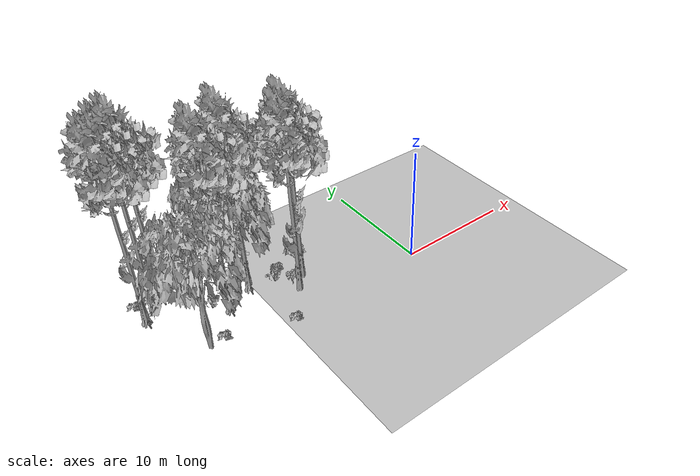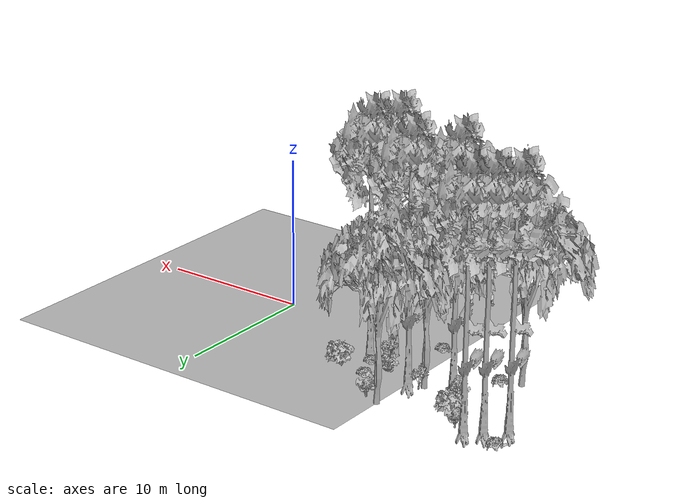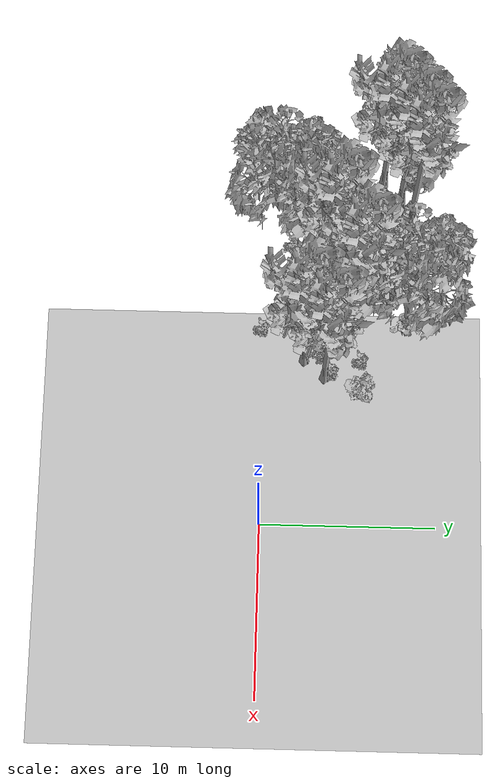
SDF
<sdf version="1.7">
 <world name="default">
  <model name="ground_plane">
   <static>1</static>
   <link name="link">
    <collision name="collision">
     <pose>-50 0 0 0 -0 0</pose>
     <geometry><plane><normal>0 0 1</normal><size>80 80</size></plane></geometry>
     <surface><contact><ode><min_depth>0.01</min_depth><max_vel>0</max_vel></ode></contact></surface>
    </collision>
    <visual name="grass">
     <cast_shadows>0</cast_shadows>
     <geometry>
      <mesh>
       <scale>0.46714285714285714 0.46714285714285714 0.1</scale>
       <uri>file://grass_plane/meshes/grass_plane.dae</uri>
      </mesh>
     </geometry>
    </visual>
   </link>
  </model>
  <model name="Tree 1">
   <static>1</static>
   <pose>-15.093527077515418 4.062446244424052 0 1.57079 -0 0</pose>
   <link name="link">
    <collision name="collision">
     <geometry><mesh><scale>3.5 5 3.5</scale><uri>model://tree_9/meshes/tree_9.obj</uri></mesh></geometry>
    </collision>
    <visual name="visual">
     <geometry><mesh><scale>3.5 5 3.5</scale><uri>model://tree_9/meshes/tree_9.obj</uri></mesh></geometry>
    </visual>
   </link>
  </model>
  <model name="Tree 18">
   <static>1</static>
   <pose>-12.724855560985617 8.397438927089532 0 1.57079 -0 0</pose>
   <link name="link">
    <collision name="collision">
     <geometry><mesh><scale>3.5 5 3.5</scale><uri>model://tree_2/meshes/tree_2.obj</uri></mesh></geometry>
    </collision>
    <visual name="visual">
     <geometry><mesh><scale>3.5 5 3.5</scale><uri>model://tree_2/meshes/tree_2.obj</uri></mesh></geometry>
    </visual>
   </link>
  </model>
  <model name="Tree 21">
   <static>1</static>
   <pose>-18.73084294914996 8.566120374249742 0 1.57079 -0 0</pose>
   <link name="link">
    <collision name="collision">
     <geometry><mesh><scale>3.5 5 3.5</scale><uri>model://tree_9/meshes/tree_9.obj</uri></mesh></geometry>
    </collision>
    <visual name="visual">
     <geometry><mesh><scale>3.5 5 3.5</scale><uri>model://tree_9/meshes/tree_9.obj</uri></mesh></geometry>
    </visual>
   </link>
  </model>
  <model name="Tree 142">
   <static>1</static>
   <pose>-9.706391934915825 2.3898278872918084 0 1.57079 -0 0</pose>
   <link name="link">
    <collision name="collision">
     <geometry><mesh><scale>3.5 5 3.5</scale><uri>model://tree_9/meshes/tree_9.obj</uri></mesh></geometry>
    </collision>
    <visual name="visual">
     <geometry><mesh><scale>3.5 5 3.5</scale><uri>model://tree_9/meshes/tree_9.obj</uri></mesh></geometry>
    </visual>
   </link>
  </model>
  <model name="Tree 172">
   <static>1</static>
   <pose>-12.697704763044289 5.311583235255156 0 1.57079 -0 0</pose>
   <link name="link">
    <collision name="collision">
     <geometry><mesh><scale>3.5 5 3.5</scale><uri>model://tree_9/meshes/tree_9.obj</uri></mesh></geometry>
    </collision>
    <visual name="visual">
     <geometry><mesh><scale>3.5 5 3.5</scale><uri>model://tree_9/meshes/tree_9.obj</uri></mesh></geometry>
    </visual>
   </link>
  </model>
  <model name="Tree 188">
   <static>1</static>
   <pose>-20.728645538184207 6.879668127119388 0 1.57079 -0 0</pose>
   <link name="link">
    <collision name="collision">
     <geometry><mesh><scale>3.5 5 3.5</scale><uri>model://tree_9/meshes/tree_9.obj</uri></mesh></geometry>
    </collision>
    <visual name="visual">
     <geometry><mesh><scale>3.5 5 3.5</scale><uri>model://tree_9/meshes/tree_9.obj</uri></mesh></geometry>
    </visual>
   </link>
  </model>
  <model name="Tree 436">
   <static>1</static>
   <pose>-19.670623640679445 7.912821819293342 0 1.57079 -0 0</pose>
   <link name="link">
    <collision name="collision">
     <geometry><mesh><scale>3.5 5 3.5</scale><uri>model://tree_9/meshes/tree_9.obj</uri></mesh></geometry>
    </collision>
    <visual name="visual">
     <geometry><mesh><scale>3.5 5 3.5</scale><uri>model://tree_9/meshes/tree_9.obj</uri></mesh></geometry>
    </visual>
   </link>
  </model>
  <model name="Tree 494">
   <static>1</static>
   <pose>-8.679380508762641 3.581211607805166 0 1.57079 -0 0</pose>
   <link name="link">
    <collision name="collision">
     <geometry><mesh><scale>3.5 5 3.5</scale><uri>model://tree_9/meshes/tree_9.obj</uri></mesh></geometry>
    </collision>
    <visual name="visual">
     <geometry><mesh><scale>3.5 5 3.5</scale><uri>model://tree_9/meshes/tree_9.obj</uri></mesh></geometry>
    </visual>
   </link>
  </model>
  <model name="Tree 537">
   <static>1</static>
   <pose>-18.27018404168917 1.224799246121897 0 1.57079 -0 0</pose>
   <link name="link">
    <collision name="collision">
     <geometry><mesh><scale>3.5 5 3.5</scale><uri>model://tree_2/meshes/tree_2.obj</uri></mesh></geometry>
    </collision>
    <visual name="visual">
     <geometry><mesh><scale>3.5 5 3.5</scale><uri>model://tree_2/meshes/tree_2.obj</uri></mesh></geometry>
    </visual>
   </link>
  </model>
  <model name="Tree 600">
   <static>1</static>
   <pose>-13.778136541005576 4.976689186851871 0 1.57079 -0 0</pose>
   <link name="link">
    <collision name="collision">
     <geometry><mesh><scale>3.5 5 3.5</scale><uri>model://tree_2/meshes/tree_2.obj</uri></mesh></geometry>
    </collision>
    <visual name="visual">
     <geometry><mesh><scale>3.5 5 3.5</scale><uri>model://tree_2/meshes/tree_2.obj</uri></mesh></geometry>
    </visual>
   </link>
  </model>
  <model name="Bush 99">
   <static>1</static>
   <pose>-20.951091364621053 8.570468547866142 0 1.57079 -0 0</pose>
   <link name="link">
    <collision name="collision">
     <geometry><mesh><scale>2 2 2</scale><uri>model://bush_2/meshes/bush_2.obj</uri></mesh></geometry>
     <surface><contact><collide_without_contact>false</collide_without_contact></contact></surface>
    </collision>
    <visual name="visual">
     <geometry><mesh><scale>2 2 2</scale><uri>model://bush_2/meshes/bush_2.obj</uri></mesh></geometry>
    </visual>
   </link>
  </model>
  <model name="Bush 111">
   <static>1</static>
   <pose>-10.715303123173587 4.463548365404044 0 1.57079 -0 0</pose>
   <link name="link">
    <collision name="collision">
     <geometry><mesh><scale>2 2 2</scale><uri>model://bush_4/meshes/bush_4.obj</uri></mesh></geometry>
     <surface><contact><collide_without_contact>false</collide_without_contact></contact></surface>
    </collision>
    <visual name="visual">
     <geometry><mesh><scale>2 2 2</scale><uri>model://bush_4/meshes/bush_4.obj</uri></mesh></geometry>
    </visual>
   </link>
  </model>
  <model name="Bush 168">
   <static>1</static>
   <pose>-16.99698888459529 7.1276721857172305 0 1.57079 -0 0</pose>
   <link name="link">
    <collision name="collision">
     <geometry><mesh><scale>2 2 2</scale><uri>model://bush_1/meshes/bush_1.obj</uri></mesh></geometry>
     <surface><contact><collide_without_contact>false</collide_without_contact></contact></surface>
    </collision>
    <visual name="visual">
     <geometry><mesh><scale>2 2 2</scale><uri>model://bush_1/meshes/bush_1.obj</uri></mesh></geometry>
    </visual>
   </link>
  </model>
  <model name="Bush 196">
   <static>1</static>
   <pose>-13.548362523198815 5.416948826121427 0 1.57079 -0 0</pose>
   <link name="link">
    <collision name="collision">
     <geometry><mesh><scale>2 2 2</scale><uri>model://bush_5/meshes/bush_5.obj</uri></mesh></geometry>
     <surface><contact><collide_without_contact>false</collide_without_contact></contact></surface>
    </collision>
    <visual name="visual">
     <geometry><mesh><scale>2 2 2</scale><uri>model://bush_5/meshes/bush_5.obj</uri></mesh></geometry>
    </visual>
   </link>
  </model>
  <model name="Bush 295">
   <static>1</static>
   <pose>-9.81895719557657 3.219450303390879 0 1.57079 -0 0</pose>
   <link name="link">
    <collision name="collision">
     <geometry><mesh><scale>2 2 2</scale><uri>model://bush_5/meshes/bush_5.obj</uri></mesh></geometry>
     <surface><contact><collide_without_contact>false</collide_without_contact></contact></surface>
    </collision>
    <visual name="visual">
     <geometry><mesh><scale>2 2 2</scale><uri>model://bush_5/meshes/bush_5.obj</uri></mesh></geometry>
    </visual>
   </link>
  </model>
  <model name="Bush 298">
   <static>1</static>
   <pose>-9.130128885797756 3.9349436489183205 0 1.57079 -0 0</pose>
   <link name="link">
    <collision name="collision">
     <geometry><mesh><scale>2 2 2</scale><uri>model://bush_2/meshes/bush_2.obj</uri></mesh></geometry>
     <surface><contact><collide_without_contact>false</collide_without_contact></contact></surface>
    </collision>
    <visual name="visual">
     <geometry><mesh><scale>2 2 2</scale><uri>model://bush_2/meshes/bush_2.obj</uri></mesh></geometry>
    </visual>
   </link>
  </model>
  <model name="Bush 311">
   <static>1</static>
   <pose>-16.912279134512822 1.5297210826425243 0 1.57079 -0 0</pose>
   <link name="link">
    <collision name="collision">
     <geometry><mesh><scale>2 2 2</scale><uri>model://bush_2/meshes/bush_2.obj</uri></mesh></geometry>
     <surface><contact><collide_without_contact>false</collide_without_contact></contact></surface>
    </collision>
    <visual name="visual">
     <geometry><mesh><scale>2 2 2</scale><uri>model://bush_2/meshes/bush_2.obj</uri></mesh></geometry>
    </visual>
   </link>
  </model>
  <model name="Bush 336">
   <static>1</static>
   <pose>-16.10454018377303 4.834087591574274 0 1.57079 -0 0</pose>
   <link name="link">
    <collision name="collision">
     <geometry><mesh><scale>2 2 2</scale><uri>model://bush_4/meshes/bush_4.obj</uri></mesh></geometry>
     <surface><contact><collide_without_contact>false</collide_without_contact></contact></surface>
    </collision>
    <visual name="visual">
     <geometry><mesh><scale>2 2 2</scale><uri>model://bush_4/meshes/bush_4.obj</uri></mesh></geometry>
    </visual>
   </link>
  </model>
  <model name="Bush 373">
   <static>1</static>
   <pose>-17.974773729564077 8.252389658415566 0 1.57079 -0 0</pose>
   <link name="link">
    <collision name="collision">
     <geometry><mesh><scale>2 2 2</scale><uri>model://bush_0/meshes/bush_0.obj</uri></mesh></geometry>
     <surface><contact><collide_without_contact>false</collide_without_contact></contact></surface>
    </collision>
    <visual name="visual">
     <geometry><mesh><scale>2 2 2</scale><uri>model://bush_0/meshes/bush_0.obj</uri></mesh></geometry>
    </visual>
   </link>
  </model>
  <model name="Bush 527">
   <static>1</static>
   <pose>-11.612145496854687 8.08566225980195 0 1.57079 -0 0</pose>
   <link name="link">
    <collision name="collision">
     <geometry><mesh><scale>2 2 2</scale><uri>model://bush_0/meshes/bush_0.obj</uri></mesh></geometry>
     <surface><contact><collide_without_contact>false</collide_without_contact></contact></surface>
    </collision>
    <visual name="visual">
     <geometry><mesh><scale>2 2 2</scale><uri>model://bush_0/meshes/bush_0.obj</uri></mesh></geometry>
    </visual>
   </link>
  </model>
  <model name="Bush 553">
   <static>1</static>
   <pose>-11.696485873753858 -0.13735433967912059 0 1.57079 -0 0</pose>
   <link name="link">
    <collision name="collision">
     <geometry><mesh><scale>2 2 2</scale><uri>model://bush_2/meshes/bush_2.obj</uri></mesh></geometry>
     <surface><contact><collide_without_contact>false</collide_without_contact></contact></surface>
    </collision>
    <visual name="visual">
     <geometry><mesh><scale>2 2 2</scale><uri>model://bush_2/meshes/bush_2.obj</uri></mesh></geometry>
    </visual>
   </link>
  </model>
  <model name="Bush 570">
   <static>1</static>
   <pose>-9.822348874580115 5.637824121519586 0 1.57079 -0 0</pose>
   <link name="link">
    <collision name="collision">
     <geometry><mesh><scale>2 2 2</scale><uri>model://bush_2/meshes/bush_2.obj</uri></mesh></geometry>
     <surface><contact><collide_without_contact>false</collide_without_contact></contact></surface>
    </collision>
    <visual name="visual">
     <geometry><mesh><scale>2 2 2</scale><uri>model://bush_2/meshes/bush_2.obj</uri></mesh></geometry>
    </visual>
   </link>
  </model>
  <model name="Bush 599">
   <static>1</static>
   <pose>-7.95686492003129 5.542996230868468 0 1.57079 -0 0</pose>
   <link name="link">
    <collision name="collision">
     <geometry><mesh><scale>2 2 2</scale><uri>model://bush_1/meshes/bush_1.obj</uri></mesh></geometry>
     <surface><contact><collide_without_contact>false</collide_without_contact></contact></surface>
    </collision>
    <visual name="visual">
     <geometry><mesh><scale>2 2 2</scale><uri>model://bush_1/meshes/bush_1.obj</uri></mesh></geometry>
    </visual>
   </link>
  </model>
 </world>
</sdf>
